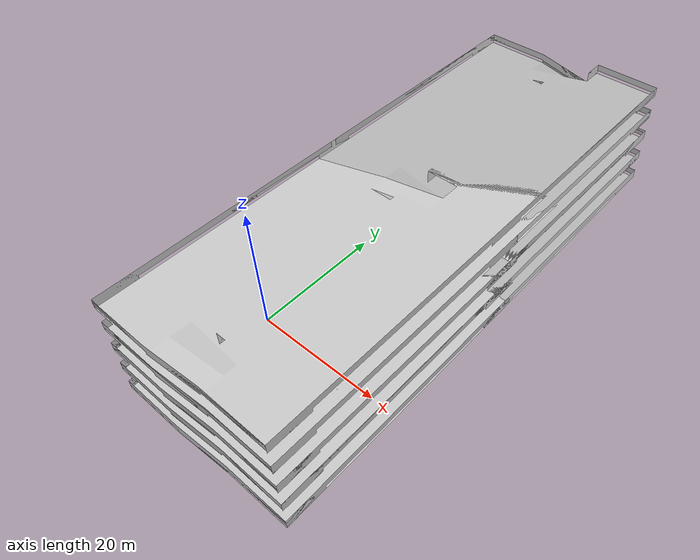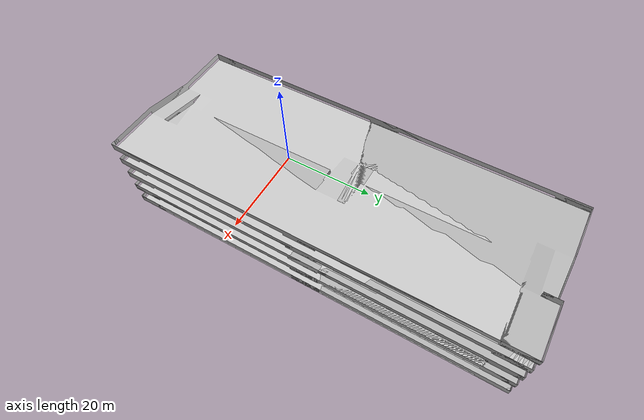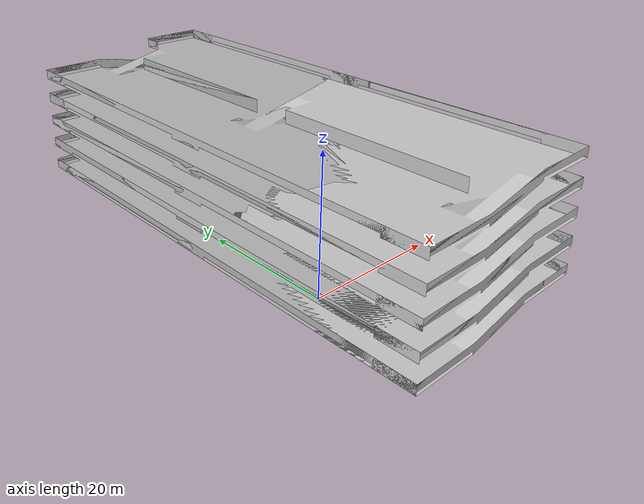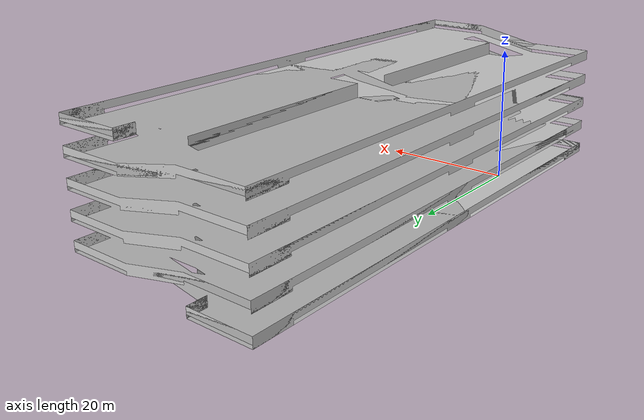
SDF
<?xml version="1.0" ?>
<sdf version="1.6">
  <world name="parking_garage">
    <physics name="1ms" type="ignored">
      <max_step_size>0.001</max_step_size>
      <real_time_factor>1.0</real_time_factor>
    </physics>

    <plugin
      filename="libignition-gazebo-physics-system.so"
      name="gz::sim::systems::Physics">
    </plugin>
    <plugin
      filename="libignition-gazebo-sensors-system.so"
      name="ignition::gazebo::systems::Sensors">
      <render_engine>ogre2</render_engine>
    </plugin>
    <plugin
      filename="libignition-gazebo-scene-broadcaster-system.so"
      name="ignition::gazebo::systems::SceneBroadcaster">
    </plugin>
    <plugin
      filename="libignition-gazebo-user-commands-system.so"
      name="gz::sim::systems::UserCommands">
    </plugin>
    <plugin
      filename="libignition-gazebo-imu-system.so"
      name="ignition::gazebo::systems::Imu">
    </plugin>

    <light type="directional" name="sun">
      <cast_shadows>true</cast_shadows>
      <pose>0 0 10 0 0 0</pose>
      <diffuse>1 1 1 1</diffuse>
      <specular>0.5 0.5 0.5 1</specular>
      <attenuation>
        <range>1000</range>
        <constant>0.9</constant>
        <linear>0.01</linear>
        <quadratic>0.001</quadratic>
      </attenuation>
      <direction>-0.5 0.1 -0.9</direction>
    </light>

  <include>
    <uri>model://parking_garage</uri>
  </include>

  <scene>
    <grid>false</grid>
  </scene>

  </world>
</sdf>

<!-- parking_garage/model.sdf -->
<sdf version="1.6">
<model name="parking_garage">
  <static>true</static>
  <link name="link">
    <collision name="collision">
      <geometry>
        <mesh>
          <scale>1 1 1</scale>
          <uri>meshes/parking_garage.dae</uri>
        </mesh>
      </geometry>
    </collision>
    <visual name="visual">
      <geometry>
        <mesh>
          <scale>1 1 1</scale>
          <uri>meshes/parking_garage.dae</uri>
        </mesh>
      </geometry>
    </visual>
  </link>
  <link name="link_flipped">
    <collision name="collision">
      <geometry>
        <mesh>
          <scale>1 1 1</scale>
          <uri>meshes/parking_garage_flipped.dae</uri>
        </mesh>
      </geometry>
    </collision>
    <visual name="visual">
      <geometry>
        <mesh>
          <scale>1 1 1</scale>
          <uri>meshes/parking_garage_flipped.dae</uri>
        </mesh>
      </geometry>
    </visual>
  </link>
</model>
</sdf>
